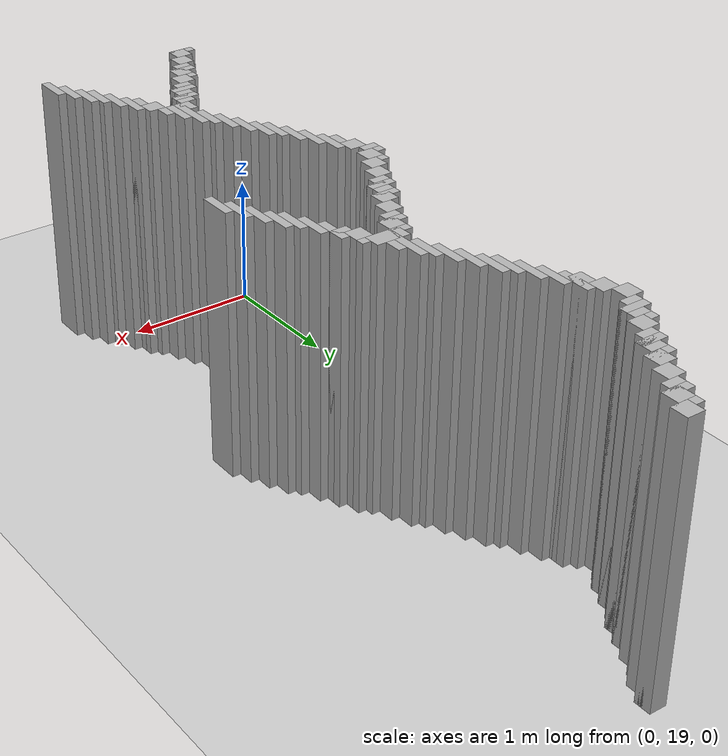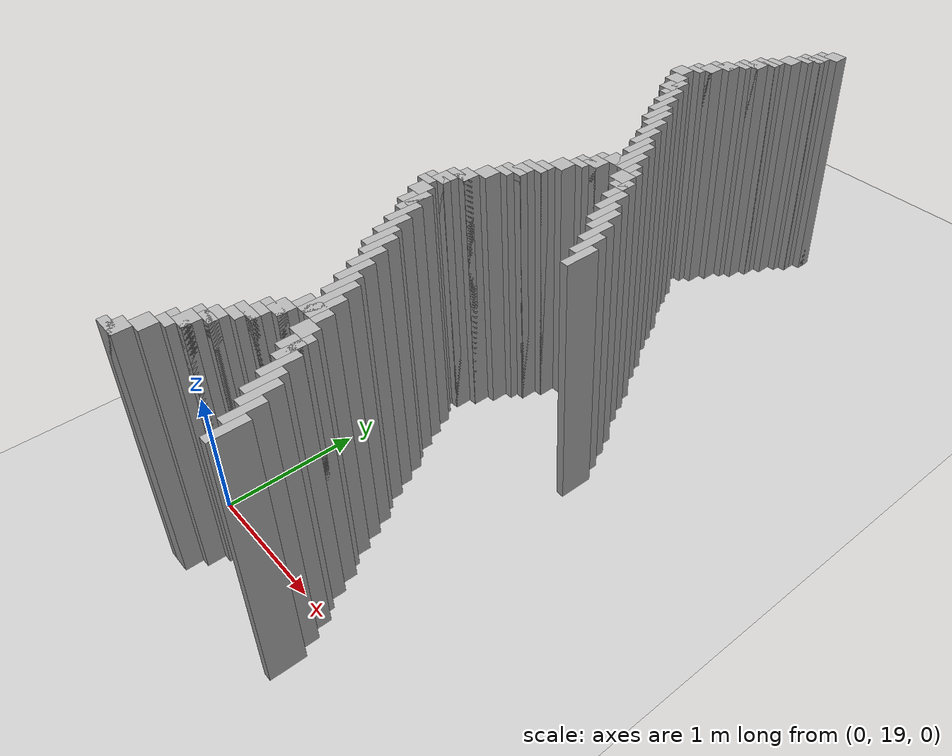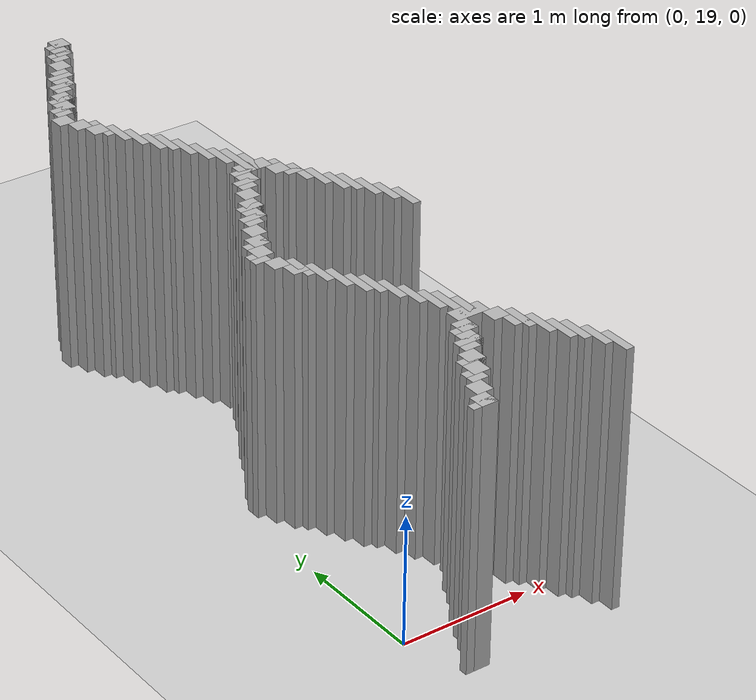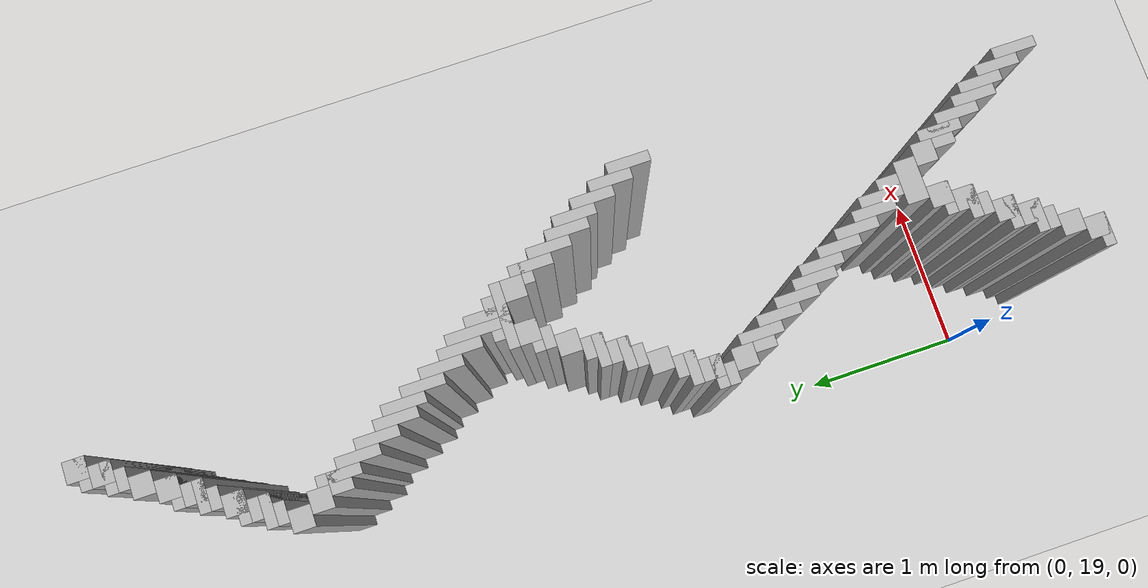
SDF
<sdf version="1.6">
 <world name="slam_world">
  <model name="ground_plane">
   <static>true</static>
   <link name="link">
    <collision name="collision">
     <geometry><plane><normal>0 0 1</normal><size>100 100</size></plane></geometry>
    </collision>
    <visual name="visual">
     <geometry><plane><normal>0 0 1</normal><size>100 100</size></plane></geometry>
     <material>
      <ambient>0.8 0.8 0.8 1</ambient>
      <diffuse>0.8 0.8 0.8 1</diffuse>
      <specular>0.8 0.8 0.8 1</specular>
     </material>
    </visual>
   </link>
  </model>
  <model name="wall_2">
   <static>true</static>
   <pose>0.7659574468085106 24.319148936170212 1.0 0 0 0</pose>
   <link name="link">
    <collision name="collision">
     <geometry><box><size>0.1276595744680851 0.1276595744680851 2.0</size></box></geometry>
    </collision>
    <visual name="visual">
     <geometry><box><size>0.1276595744680851 0.1276595744680851 2.0</size></box></geometry>
     <material><ambient>0.5 0.5 0.5 1</ambient><diffuse>0.7 0.7 0.7 1</diffuse></material>
    </visual>
   </link>
  </model>
  <model name="wall_8">
   <static>true</static>
   <pose>0.7340425531914893 24.28723404255319 1.0 0 0 0</pose>
   <link name="link">
    <collision name="collision">
     <geometry><box><size>0.19148936170212766 0.06382978723404255 2.0</size></box></geometry>
    </collision>
    <visual name="visual">
     <geometry><box><size>0.19148936170212766 0.06382978723404255 2.0</size></box></geometry>
     <material><ambient>0.5 0.5 0.5 1</ambient><diffuse>0.7 0.7 0.7 1</diffuse></material>
    </visual>
   </link>
  </model>
  <model name="wall_14">
   <static>true</static>
   <pose>0.702127659574468 24.191489361702125 1.0 0 0 0</pose>
   <link name="link">
    <collision name="collision">
     <geometry><box><size>0.1276595744680851 0.1276595744680851 2.0</size></box></geometry>
    </collision>
    <visual name="visual">
     <geometry><box><size>0.1276595744680851 0.1276595744680851 2.0</size></box></geometry>
     <material><ambient>0.5 0.5 0.5 1</ambient><diffuse>0.7 0.7 0.7 1</diffuse></material>
    </visual>
   </link>
  </model>
  <model name="wall_20">
   <static>true</static>
   <pose>0.6702127659574467 24.159574468085104 1.0 0 0 0</pose>
   <link name="link">
    <collision name="collision">
     <geometry><box><size>0.19148936170212766 0.06382978723404255 2.0</size></box></geometry>
    </collision>
    <visual name="visual">
     <geometry><box><size>0.19148936170212766 0.06382978723404255 2.0</size></box></geometry>
     <material><ambient>0.5 0.5 0.5 1</ambient><diffuse>0.7 0.7 0.7 1</diffuse></material>
    </visual>
   </link>
  </model>
  <model name="wall_26">
   <static>true</static>
   <pose>0.6382978723404255 24.095744680851062 1.0 0 0 0</pose>
   <link name="link">
    <collision name="collision">
     <geometry><box><size>0.1276595744680851 0.06382978723404255 2.0</size></box></geometry>
    </collision>
    <visual name="visual">
     <geometry><box><size>0.1276595744680851 0.06382978723404255 2.0</size></box></geometry>
     <material><ambient>0.5 0.5 0.5 1</ambient><diffuse>0.7 0.7 0.7 1</diffuse></material>
    </visual>
   </link>
  </model>
  <model name="wall_32">
   <static>true</static>
   <pose>0.5744680851063829 23.999999999999996 1.0 0 0 0</pose>
   <link name="link">
    <collision name="collision">
     <geometry><box><size>0.1276595744680851 0.1276595744680851 2.0</size></box></geometry>
    </collision>
    <visual name="visual">
     <geometry><box><size>0.1276595744680851 0.1276595744680851 2.0</size></box></geometry>
     <material><ambient>0.5 0.5 0.5 1</ambient><diffuse>0.7 0.7 0.7 1</diffuse></material>
    </visual>
   </link>
  </model>
  <model name="wall_38">
   <static>true</static>
   <pose>0.5106382978723404 23.872340425531913 1.0 0 0 0</pose>
   <link name="link">
    <collision name="collision">
     <geometry><box><size>0.1276595744680851 0.1276595744680851 2.0</size></box></geometry>
    </collision>
    <visual name="visual">
     <geometry><box><size>0.1276595744680851 0.1276595744680851 2.0</size></box></geometry>
     <material><ambient>0.5 0.5 0.5 1</ambient><diffuse>0.7 0.7 0.7 1</diffuse></material>
    </visual>
   </link>
  </model>
  <model name="wall_44">
   <static>true</static>
   <pose>0.4787234042553191 23.840425531914892 1.0 0 0 0</pose>
   <link name="link">
    <collision name="collision">
     <geometry><box><size>0.19148936170212766 0.06382978723404255 2.0</size></box></geometry>
    </collision>
    <visual name="visual">
     <geometry><box><size>0.19148936170212766 0.06382978723404255 2.0</size></box></geometry>
     <material><ambient>0.5 0.5 0.5 1</ambient><diffuse>0.7 0.7 0.7 1</diffuse></material>
    </visual>
   </link>
  </model>
  <model name="wall_50">
   <static>true</static>
   <pose>0.44680851063829785 23.744680851063826 1.0 0 0 0</pose>
   <link name="link">
    <collision name="collision">
     <geometry><box><size>0.1276595744680851 0.1276595744680851 2.0</size></box></geometry>
    </collision>
    <visual name="visual">
     <geometry><box><size>0.1276595744680851 0.1276595744680851 2.0</size></box></geometry>
     <material><ambient>0.5 0.5 0.5 1</ambient><diffuse>0.7 0.7 0.7 1</diffuse></material>
    </visual>
   </link>
  </model>
  <model name="wall_56">
   <static>true</static>
   <pose>0.4148936170212766 23.712765957446805 1.0 0 0 0</pose>
   <link name="link">
    <collision name="collision">
     <geometry><box><size>0.19148936170212766 0.06382978723404255 2.0</size></box></geometry>
    </collision>
    <visual name="visual">
     <geometry><box><size>0.19148936170212766 0.06382978723404255 2.0</size></box></geometry>
     <material><ambient>0.5 0.5 0.5 1</ambient><diffuse>0.7 0.7 0.7 1</diffuse></material>
    </visual>
   </link>
  </model>
  <model name="wall_62">
   <static>true</static>
   <pose>0.3829787234042553 23.648936170212764 1.0 0 0 0</pose>
   <link name="link">
    <collision name="collision">
     <geometry><box><size>0.1276595744680851 0.06382978723404255 2.0</size></box></geometry>
    </collision>
    <visual name="visual">
     <geometry><box><size>0.1276595744680851 0.06382978723404255 2.0</size></box></geometry>
     <material><ambient>0.5 0.5 0.5 1</ambient><diffuse>0.7 0.7 0.7 1</diffuse></material>
    </visual>
   </link>
  </model>
  <model name="wall_68">
   <static>true</static>
   <pose>0.3191489361702127 23.5531914893617 1.0 0 0 0</pose>
   <link name="link">
    <collision name="collision">
     <geometry><box><size>0.1276595744680851 0.1276595744680851 2.0</size></box></geometry>
    </collision>
    <visual name="visual">
     <geometry><box><size>0.1276595744680851 0.1276595744680851 2.0</size></box></geometry>
     <material><ambient>0.5 0.5 0.5 1</ambient><diffuse>0.7 0.7 0.7 1</diffuse></material>
    </visual>
   </link>
  </model>
  <model name="wall_74">
   <static>true</static>
   <pose>0.28723404255319146 23.52127659574468 1.0 0 0 0</pose>
   <link name="link">
    <collision name="collision">
     <geometry><box><size>0.19148936170212766 0.06382978723404255 2.0</size></box></geometry>
    </collision>
    <visual name="visual">
     <geometry><box><size>0.19148936170212766 0.06382978723404255 2.0</size></box></geometry>
     <material><ambient>0.5 0.5 0.5 1</ambient><diffuse>0.7 0.7 0.7 1</diffuse></material>
    </visual>
   </link>
  </model>
  <model name="wall_80">
   <static>true</static>
   <pose>0.2553191489361702 23.425531914893615 1.0 0 0 0</pose>
   <link name="link">
    <collision name="collision">
     <geometry><box><size>0.1276595744680851 0.1276595744680851 2.0</size></box></geometry>
    </collision>
    <visual name="visual">
     <geometry><box><size>0.1276595744680851 0.1276595744680851 2.0</size></box></geometry>
     <material><ambient>0.5 0.5 0.5 1</ambient><diffuse>0.7 0.7 0.7 1</diffuse></material>
    </visual>
   </link>
  </model>
  <model name="wall_86">
   <static>true</static>
   <pose>0.22340425531914893 23.393617021276594 1.0 0 0 0</pose>
   <link name="link">
    <collision name="collision">
     <geometry><box><size>0.19148936170212766 0.06382978723404255 2.0</size></box></geometry>
    </collision>
    <visual name="visual">
     <geometry><box><size>0.19148936170212766 0.06382978723404255 2.0</size></box></geometry>
     <material><ambient>0.5 0.5 0.5 1</ambient><diffuse>0.7 0.7 0.7 1</diffuse></material>
    </visual>
   </link>
  </model>
  <model name="wall_92">
   <static>true</static>
   <pose>0.19148936170212766 23.329787234042552 1.0 0 0 0</pose>
   <link name="link">
    <collision name="collision">
     <geometry><box><size>0.1276595744680851 0.06382978723404255 2.0</size></box></geometry>
    </collision>
    <visual name="visual">
     <geometry><box><size>0.1276595744680851 0.06382978723404255 2.0</size></box></geometry>
     <material><ambient>0.5 0.5 0.5 1</ambient><diffuse>0.7 0.7 0.7 1</diffuse></material>
    </visual>
   </link>
  </model>
  <model name="wall_98">
   <static>true</static>
   <pose>0.1276595744680851 23.234042553191486 1.0 0 0 0</pose>
   <link name="link">
    <collision name="collision">
     <geometry><box><size>0.1276595744680851 0.1276595744680851 2.0</size></box></geometry>
    </collision>
    <visual name="visual">
     <geometry><box><size>0.1276595744680851 0.1276595744680851 2.0</size></box></geometry>
     <material><ambient>0.5 0.5 0.5 1</ambient><diffuse>0.7 0.7 0.7 1</diffuse></material>
    </visual>
   </link>
  </model>
  <model name="wall_107">
   <static>true</static>
   <pose>0.19148936170212766 23.106382978723403 1.0 0 0 0</pose>
   <link name="link">
    <collision name="collision">
     <geometry><box><size>0.1276595744680851 0.1276595744680851 2.0</size></box></geometry>
    </collision>
    <visual name="visual">
     <geometry><box><size>0.1276595744680851 0.1276595744680851 2.0</size></box></geometry>
     <material><ambient>0.5 0.5 0.5 1</ambient><diffuse>0.7 0.7 0.7 1</diffuse></material>
    </visual>
   </link>
  </model>
  <model name="wall_114">
   <static>true</static>
   <pose>0.28723404255319146 22.978723404255316 1.0 0 0 0</pose>
   <link name="link">
    <collision name="collision">
     <geometry><box><size>0.06382978723404255 0.2553191489361702 2.0</size></box></geometry>
    </collision>
    <visual name="visual">
     <geometry><box><size>0.06382978723404255 0.2553191489361702 2.0</size></box></geometry>
     <material><ambient>0.5 0.5 0.5 1</ambient><diffuse>0.7 0.7 0.7 1</diffuse></material>
    </visual>
   </link>
  </model>
  <model name="wall_121">
   <static>true</static>
   <pose>0.2553191489361702 22.978723404255316 1.0 0 0 0</pose>
   <link name="link">
    <collision name="collision">
     <geometry><box><size>0.1276595744680851 0.1276595744680851 2.0</size></box></geometry>
    </collision>
    <visual name="visual">
     <geometry><box><size>0.1276595744680851 0.1276595744680851 2.0</size></box></geometry>
     <material><ambient>0.5 0.5 0.5 1</ambient><diffuse>0.7 0.7 0.7 1</diffuse></material>
    </visual>
   </link>
  </model>
  <model name="wall_129">
   <static>true</static>
   <pose>0.351063829787234 22.851063829787233 1.0 0 0 0</pose>
   <link name="link">
    <collision name="collision">
     <geometry><box><size>0.06382978723404255 0.2553191489361702 2.0</size></box></geometry>
    </collision>
    <visual name="visual">
     <geometry><box><size>0.06382978723404255 0.2553191489361702 2.0</size></box></geometry>
     <material><ambient>0.5 0.5 0.5 1</ambient><diffuse>0.7 0.7 0.7 1</diffuse></material>
    </visual>
   </link>
  </model>
  <model name="wall_140">
   <static>true</static>
   <pose>0.4148936170212766 22.723404255319146 1.0 0 0 0</pose>
   <link name="link">
    <collision name="collision">
     <geometry><box><size>0.06382978723404255 0.2553191489361702 2.0</size></box></geometry>
    </collision>
    <visual name="visual">
     <geometry><box><size>0.06382978723404255 0.2553191489361702 2.0</size></box></geometry>
     <material><ambient>0.5 0.5 0.5 1</ambient><diffuse>0.7 0.7 0.7 1</diffuse></material>
    </visual>
   </link>
  </model>
  <model name="wall_148">
   <static>true</static>
   <pose>0.4787234042553191 22.595744680851062 1.0 0 0 0</pose>
   <link name="link">
    <collision name="collision">
     <geometry><box><size>0.06382978723404255 0.2553191489361702 2.0</size></box></geometry>
    </collision>
    <visual name="visual">
     <geometry><box><size>0.06382978723404255 0.2553191489361702 2.0</size></box></geometry>
     <material><ambient>0.5 0.5 0.5 1</ambient><diffuse>0.7 0.7 0.7 1</diffuse></material>
    </visual>
   </link>
  </model>
  <model name="wall_156">
   <static>true</static>
   <pose>0.5425531914893617 22.53191489361702 1.0 0 0 0</pose>
   <link name="link">
    <collision name="collision">
     <geometry><box><size>0.06382978723404255 0.2553191489361702 2.0</size></box></geometry>
    </collision>
    <visual name="visual">
     <geometry><box><size>0.06382978723404255 0.2553191489361702 2.0</size></box></geometry>
     <material><ambient>0.5 0.5 0.5 1</ambient><diffuse>0.7 0.7 0.7 1</diffuse></material>
    </visual>
   </link>
  </model>
  <model name="wall_166">
   <static>true</static>
   <pose>0.6063829787234042 22.404255319148934 1.0 0 0 0</pose>
   <link name="link">
    <collision name="collision">
     <geometry><box><size>0.06382978723404255 0.2553191489361702 2.0</size></box></geometry>
    </collision>
    <visual name="visual">
     <geometry><box><size>0.06382978723404255 0.2553191489361702 2.0</size></box></geometry>
     <material><ambient>0.5 0.5 0.5 1</ambient><diffuse>0.7 0.7 0.7 1</diffuse></material>
    </visual>
   </link>
  </model>
  <model name="wall_176">
   <static>true</static>
   <pose>0.6702127659574467 22.27659574468085 1.0 0 0 0</pose>
   <link name="link">
    <collision name="collision">
     <geometry><box><size>0.06382978723404255 0.2553191489361702 2.0</size></box></geometry>
    </collision>
    <visual name="visual">
     <geometry><box><size>0.06382978723404255 0.2553191489361702 2.0</size></box></geometry>
     <material><ambient>0.5 0.5 0.5 1</ambient><diffuse>0.7 0.7 0.7 1</diffuse></material>
    </visual>
   </link>
  </model>
  <model name="wall_186">
   <static>true</static>
   <pose>0.7340425531914893 22.148936170212764 1.0 0 0 0</pose>
   <link name="link">
    <collision name="collision">
     <geometry><box><size>0.06382978723404255 0.2553191489361702 2.0</size></box></geometry>
    </collision>
    <visual name="visual">
     <geometry><box><size>0.06382978723404255 0.2553191489361702 2.0</size></box></geometry>
     <material><ambient>0.5 0.5 0.5 1</ambient><diffuse>0.7 0.7 0.7 1</diffuse></material>
    </visual>
   </link>
  </model>
  <model name="wall_194">
   <static>true</static>
   <pose>0.7978723404255319 22.02127659574468 1.0 0 0 0</pose>
   <link name="link">
    <collision name="collision">
     <geometry><box><size>0.06382978723404255 0.3829787234042553 2.0</size></box></geometry>
    </collision>
    <visual name="visual">
     <geometry><box><size>0.06382978723404255 0.3829787234042553 2.0</size></box></geometry>
     <material><ambient>0.5 0.5 0.5 1</ambient><diffuse>0.7 0.7 0.7 1</diffuse></material>
    </visual>
   </link>
  </model>
  <model name="wall_204">
   <static>true</static>
   <pose>0.8617021276595744 21.957446808510635 1.0 0 0 0</pose>
   <link name="link">
    <collision name="collision">
     <geometry><box><size>0.06382978723404255 0.2553191489361702 2.0</size></box></geometry>
    </collision>
    <visual name="visual">
     <geometry><box><size>0.06382978723404255 0.2553191489361702 2.0</size></box></geometry>
     <material><ambient>0.5 0.5 0.5 1</ambient><diffuse>0.7 0.7 0.7 1</diffuse></material>
    </visual>
   </link>
  </model>
  <model name="wall_212">
   <static>true</static>
   <pose>0.8297872340425532 21.893617021276594 1.0 0 0 0</pose>
   <link name="link">
    <collision name="collision">
     <geometry><box><size>0.2553191489361702 0.1276595744680851 2.0</size></box></geometry>
    </collision>
    <visual name="visual">
     <geometry><box><size>0.2553191489361702 0.1276595744680851 2.0</size></box></geometry>
     <material><ambient>0.5 0.5 0.5 1</ambient><diffuse>0.7 0.7 0.7 1</diffuse></material>
    </visual>
   </link>
  </model>
  <model name="wall_218">
   <static>true</static>
   <pose>0.8297872340425532 21.861702127659573 1.0 0 0 0</pose>
   <link name="link">
    <collision name="collision">
     <geometry><box><size>0.3829787234042553 0.06382978723404255 2.0</size></box></geometry>
    </collision>
    <visual name="visual">
     <geometry><box><size>0.3829787234042553 0.06382978723404255 2.0</size></box></geometry>
     <material><ambient>0.5 0.5 0.5 1</ambient><diffuse>0.7 0.7 0.7 1</diffuse></material>
    </visual>
   </link>
  </model>
  <model name="wall_225">
   <static>true</static>
   <pose>0.702127659574468 21.76595744680851 1.0 0 0 0</pose>
   <link name="link">
    <collision name="collision">
     <geometry><box><size>0.1276595744680851 0.1276595744680851 2.0</size></box></geometry>
    </collision>
    <visual name="visual">
     <geometry><box><size>0.1276595744680851 0.1276595744680851 2.0</size></box></geometry>
     <material><ambient>0.5 0.5 0.5 1</ambient><diffuse>0.7 0.7 0.7 1</diffuse></material>
    </visual>
   </link>
  </model>
  <model name="wall_226">
   <static>true</static>
   <pose>0.9574468085106382 21.76595744680851 1.0 0 0 0</pose>
   <link name="link">
    <collision name="collision">
     <geometry><box><size>0.1276595744680851 0.1276595744680851 2.0</size></box></geometry>
    </collision>
    <visual name="visual">
     <geometry><box><size>0.1276595744680851 0.1276595744680851 2.0</size></box></geometry>
     <material><ambient>0.5 0.5 0.5 1</ambient><diffuse>0.7 0.7 0.7 1</diffuse></material>
    </visual>
   </link>
  </model>
  <model name="wall_232">
   <static>true</static>
   <pose>0.6702127659574467 21.734042553191486 1.0 0 0 0</pose>
   <link name="link">
    <collision name="collision">
     <geometry><box><size>0.19148936170212766 0.06382978723404255 2.0</size></box></geometry>
    </collision>
    <visual name="visual">
     <geometry><box><size>0.19148936170212766 0.06382978723404255 2.0</size></box></geometry>
     <material><ambient>0.5 0.5 0.5 1</ambient><diffuse>0.7 0.7 0.7 1</diffuse></material>
    </visual>
   </link>
  </model>
  <model name="wall_233">
   <static>true</static>
   <pose>1.053191489361702 21.638297872340424 1.0 0 0 0</pose>
   <link name="link">
    <collision name="collision">
     <geometry><box><size>0.06382978723404255 0.2553191489361702 2.0</size></box></geometry>
    </collision>
    <visual name="visual">
     <geometry><box><size>0.06382978723404255 0.2553191489361702 2.0</size></box></geometry>
     <material><ambient>0.5 0.5 0.5 1</ambient><diffuse>0.7 0.7 0.7 1</diffuse></material>
    </visual>
   </link>
  </model>
  <model name="wall_240">
   <static>true</static>
   <pose>0.6382978723404255 21.670212765957444 1.0 0 0 0</pose>
   <link name="link">
    <collision name="collision">
     <geometry><box><size>0.1276595744680851 0.06382978723404255 2.0</size></box></geometry>
    </collision>
    <visual name="visual">
     <geometry><box><size>0.1276595744680851 0.06382978723404255 2.0</size></box></geometry>
     <material><ambient>0.5 0.5 0.5 1</ambient><diffuse>0.7 0.7 0.7 1</diffuse></material>
    </visual>
   </link>
  </model>
  <model name="wall_241">
   <static>true</static>
   <pose>1.0212765957446808 21.670212765957444 1.0 0 0 0</pose>
   <link name="link">
    <collision name="collision">
     <geometry><box><size>0.1276595744680851 0.06382978723404255 2.0</size></box></geometry>
    </collision>
    <visual name="visual">
     <geometry><box><size>0.1276595744680851 0.06382978723404255 2.0</size></box></geometry>
     <material><ambient>0.5 0.5 0.5 1</ambient><diffuse>0.7 0.7 0.7 1</diffuse></material>
    </visual>
   </link>
  </model>
  <model name="wall_245">
   <static>true</static>
   <pose>0.5744680851063829 21.574468085106382 1.0 0 0 0</pose>
   <link name="link">
    <collision name="collision">
     <geometry><box><size>0.1276595744680851 0.1276595744680851 2.0</size></box></geometry>
    </collision>
    <visual name="visual">
     <geometry><box><size>0.1276595744680851 0.1276595744680851 2.0</size></box></geometry>
     <material><ambient>0.5 0.5 0.5 1</ambient><diffuse>0.7 0.7 0.7 1</diffuse></material>
    </visual>
   </link>
  </model>
  <model name="wall_246">
   <static>true</static>
   <pose>1.1170212765957446 21.51063829787234 1.0 0 0 0</pose>
   <link name="link">
    <collision name="collision">
     <geometry><box><size>0.06382978723404255 0.2553191489361702 2.0</size></box></geometry>
    </collision>
    <visual name="visual">
     <geometry><box><size>0.06382978723404255 0.2553191489361702 2.0</size></box></geometry>
     <material><ambient>0.5 0.5 0.5 1</ambient><diffuse>0.7 0.7 0.7 1</diffuse></material>
    </visual>
   </link>
  </model>
  <model name="wall_253">
   <static>true</static>
   <pose>0.5106382978723404 21.446808510638295 1.0 0 0 0</pose>
   <link name="link">
    <collision name="collision">
     <geometry><box><size>0.1276595744680851 0.1276595744680851 2.0</size></box></geometry>
    </collision>
    <visual name="visual">
     <geometry><box><size>0.1276595744680851 0.1276595744680851 2.0</size></box></geometry>
     <material><ambient>0.5 0.5 0.5 1</ambient><diffuse>0.7 0.7 0.7 1</diffuse></material>
    </visual>
   </link>
  </model>
  <model name="wall_254">
   <static>true</static>
   <pose>1.180851063829787 21.382978723404253 1.0 0 0 0</pose>
   <link name="link">
    <collision name="collision">
     <geometry><box><size>0.06382978723404255 0.2553191489361702 2.0</size></box></geometry>
    </collision>
    <visual name="visual">
     <geometry><box><size>0.06382978723404255 0.2553191489361702 2.0</size></box></geometry>
     <material><ambient>0.5 0.5 0.5 1</ambient><diffuse>0.7 0.7 0.7 1</diffuse></material>
    </visual>
   </link>
  </model>
  <model name="wall_261">
   <static>true</static>
   <pose>0.4787234042553191 21.414893617021274 1.0 0 0 0</pose>
   <link name="link">
    <collision name="collision">
     <geometry><box><size>0.19148936170212766 0.06382978723404255 2.0</size></box></geometry>
    </collision>
    <visual name="visual">
     <geometry><box><size>0.19148936170212766 0.06382978723404255 2.0</size></box></geometry>
     <material><ambient>0.5 0.5 0.5 1</ambient><diffuse>0.7 0.7 0.7 1</diffuse></material>
    </visual>
   </link>
  </model>
  <model name="wall_262">
   <static>true</static>
   <pose>1.2446808510638296 21.319148936170212 1.0 0 0 0</pose>
   <link name="link">
    <collision name="collision">
     <geometry><box><size>0.06382978723404255 0.2553191489361702 2.0</size></box></geometry>
    </collision>
    <visual name="visual">
     <geometry><box><size>0.06382978723404255 0.2553191489361702 2.0</size></box></geometry>
     <material><ambient>0.5 0.5 0.5 1</ambient><diffuse>0.7 0.7 0.7 1</diffuse></material>
    </visual>
   </link>
  </model>
  <model name="wall_269">
   <static>true</static>
   <pose>0.44680851063829785 21.319148936170212 1.0 0 0 0</pose>
   <link name="link">
    <collision name="collision">
     <geometry><box><size>0.1276595744680851 0.1276595744680851 2.0</size></box></geometry>
    </collision>
    <visual name="visual">
     <geometry><box><size>0.1276595744680851 0.1276595744680851 2.0</size></box></geometry>
     <material><ambient>0.5 0.5 0.5 1</ambient><diffuse>0.7 0.7 0.7 1</diffuse></material>
    </visual>
   </link>
  </model>
  <model name="wall_273">
   <static>true</static>
   <pose>0.4148936170212766 21.28723404255319 1.0 0 0 0</pose>
   <link name="link">
    <collision name="collision">
     <geometry><box><size>0.19148936170212766 0.06382978723404255 2.0</size></box></geometry>
    </collision>
    <visual name="visual">
     <geometry><box><size>0.19148936170212766 0.06382978723404255 2.0</size></box></geometry>
     <material><ambient>0.5 0.5 0.5 1</ambient><diffuse>0.7 0.7 0.7 1</diffuse></material>
    </visual>
   </link>
  </model>
  <model name="wall_274">
   <static>true</static>
   <pose>1.3085106382978722 21.191489361702125 1.0 0 0 0</pose>
   <link name="link">
    <collision name="collision">
     <geometry><box><size>0.06382978723404255 0.2553191489361702 2.0</size></box></geometry>
    </collision>
    <visual name="visual">
     <geometry><box><size>0.06382978723404255 0.2553191489361702 2.0</size></box></geometry>
     <material><ambient>0.5 0.5 0.5 1</ambient><diffuse>0.7 0.7 0.7 1</diffuse></material>
    </visual>
   </link>
  </model>
  <model name="wall_281">
   <static>true</static>
   <pose>0.3829787234042553 21.223404255319146 1.0 0 0 0</pose>
   <link name="link">
    <collision name="collision">
     <geometry><box><size>0.1276595744680851 0.06382978723404255 2.0</size></box></geometry>
    </collision>
    <visual name="visual">
     <geometry><box><size>0.1276595744680851 0.06382978723404255 2.0</size></box></geometry>
     <material><ambient>0.5 0.5 0.5 1</ambient><diffuse>0.7 0.7 0.7 1</diffuse></material>
    </visual>
   </link>
  </model>
  <model name="wall_285">
   <static>true</static>
   <pose>0.3191489361702127 21.127659574468083 1.0 0 0 0</pose>
   <link name="link">
    <collision name="collision">
     <geometry><box><size>0.1276595744680851 0.1276595744680851 2.0</size></box></geometry>
    </collision>
    <visual name="visual">
     <geometry><box><size>0.1276595744680851 0.1276595744680851 2.0</size></box></geometry>
     <material><ambient>0.5 0.5 0.5 1</ambient><diffuse>0.7 0.7 0.7 1</diffuse></material>
    </visual>
   </link>
  </model>
  <model name="wall_286">
   <static>true</static>
   <pose>1.3723404255319147 21.06382978723404 1.0 0 0 0</pose>
   <link name="link">
    <collision name="collision">
     <geometry><box><size>0.06382978723404255 0.2553191489361702 2.0</size></box></geometry>
    </collision>
    <visual name="visual">
     <geometry><box><size>0.06382978723404255 0.2553191489361702 2.0</size></box></geometry>
     <material><ambient>0.5 0.5 0.5 1</ambient><diffuse>0.7 0.7 0.7 1</diffuse></material>
    </visual>
   </link>
  </model>
  <model name="wall_293">
   <static>true</static>
   <pose>0.2553191489361702 21.0 1.0 0 0 0</pose>
   <link name="link">
    <collision name="collision">
     <geometry><box><size>0.1276595744680851 0.1276595744680851 2.0</size></box></geometry>
    </collision>
    <visual name="visual">
     <geometry><box><size>0.1276595744680851 0.1276595744680851 2.0</size></box></geometry>
     <material><ambient>0.5 0.5 0.5 1</ambient><diffuse>0.7 0.7 0.7 1</diffuse></material>
    </visual>
   </link>
  </model>
  <model name="wall_294">
   <static>true</static>
   <pose>1.4361702127659572 20.936170212765955 1.0 0 0 0</pose>
   <link name="link">
    <collision name="collision">
     <geometry><box><size>0.06382978723404255 0.2553191489361702 2.0</size></box></geometry>
    </collision>
    <visual name="visual">
     <geometry><box><size>0.06382978723404255 0.2553191489361702 2.0</size></box></geometry>
     <material><ambient>0.5 0.5 0.5 1</ambient><diffuse>0.7 0.7 0.7 1</diffuse></material>
    </visual>
   </link>
  </model>
  <model name="wall_301">
   <static>true</static>
   <pose>0.22340425531914893 20.968085106382976 1.0 0 0 0</pose>
   <link name="link">
    <collision name="collision">
     <geometry><box><size>0.19148936170212766 0.06382978723404255 2.0</size></box></geometry>
    </collision>
    <visual name="visual">
     <geometry><box><size>0.19148936170212766 0.06382978723404255 2.0</size></box></geometry>
     <material><ambient>0.5 0.5 0.5 1</ambient><diffuse>0.7 0.7 0.7 1</diffuse></material>
    </visual>
   </link>
  </model>
  <model name="wall_309">
   <static>true</static>
   <pose>0.19148936170212766 20.872340425531913 1.0 0 0 0</pose>
   <link name="link">
    <collision name="collision">
     <geometry><box><size>0.1276595744680851 0.1276595744680851 2.0</size></box></geometry>
    </collision>
    <visual name="visual">
     <geometry><box><size>0.1276595744680851 0.1276595744680851 2.0</size></box></geometry>
     <material><ambient>0.5 0.5 0.5 1</ambient><diffuse>0.7 0.7 0.7 1</diffuse></material>
    </visual>
   </link>
  </model>
  <model name="wall_313">
   <static>true</static>
   <pose>0.15957446808510636 20.840425531914892 1.0 0 0 0</pose>
   <link name="link">
    <collision name="collision">
     <geometry><box><size>0.19148936170212766 0.06382978723404255 2.0</size></box></geometry>
    </collision>
    <visual name="visual">
     <geometry><box><size>0.19148936170212766 0.06382978723404255 2.0</size></box></geometry>
     <material><ambient>0.5 0.5 0.5 1</ambient><diffuse>0.7 0.7 0.7 1</diffuse></material>
    </visual>
   </link>
  </model>
  <model name="wall_322">
   <static>true</static>
   <pose>0.1276595744680851 20.77659574468085 1.0 0 0 0</pose>
   <link name="link">
    <collision name="collision">
     <geometry><box><size>0.1276595744680851 0.06382978723404255 2.0</size></box></geometry>
    </collision>
    <visual name="visual">
     <geometry><box><size>0.1276595744680851 0.06382978723404255 2.0</size></box></geometry>
     <material><ambient>0.5 0.5 0.5 1</ambient><diffuse>0.7 0.7 0.7 1</diffuse></material>
    </visual>
   </link>
  </model>
  <model name="wall_326">
   <static>true</static>
   <pose>0.19148936170212766 20.680851063829785 1.0 0 0 0</pose>
   <link name="link">
    <collision name="collision">
     <geometry><box><size>0.1276595744680851 0.1276595744680851 2.0</size></box></geometry>
    </collision>
    <visual name="visual">
     <geometry><box><size>0.1276595744680851 0.1276595744680851 2.0</size></box></geometry>
     <material><ambient>0.5 0.5 0.5 1</ambient><diffuse>0.7 0.7 0.7 1</diffuse></material>
    </visual>
   </link>
  </model>
  <model name="wall_334">
   <static>true</static>
   <pose>0.28723404255319146 20.5531914893617 1.0 0 0 0</pose>
   <link name="link">
    <collision name="collision">
     <geometry><box><size>0.06382978723404255 0.2553191489361702 2.0</size></box></geometry>
    </collision>
    <visual name="visual">
     <geometry><box><size>0.06382978723404255 0.2553191489361702 2.0</size></box></geometry>
     <material><ambient>0.5 0.5 0.5 1</ambient><diffuse>0.7 0.7 0.7 1</diffuse></material>
    </visual>
   </link>
  </model>
  <model name="wall_342">
   <static>true</static>
   <pose>0.2553191489361702 20.5531914893617 1.0 0 0 0</pose>
   <link name="link">
    <collision name="collision">
     <geometry><box><size>0.1276595744680851 0.1276595744680851 2.0</size></box></geometry>
    </collision>
    <visual name="visual">
     <geometry><box><size>0.1276595744680851 0.1276595744680851 2.0</size></box></geometry>
     <material><ambient>0.5 0.5 0.5 1</ambient><diffuse>0.7 0.7 0.7 1</diffuse></material>
    </visual>
   </link>
  </model>
  <model name="wall_349">
   <static>true</static>
   <pose>0.351063829787234 20.425531914893615 1.0 0 0 0</pose>
   <link name="link">
    <collision name="collision">
     <geometry><box><size>0.06382978723404255 0.2553191489361702 2.0</size></box></geometry>
    </collision>
    <visual name="visual">
     <geometry><box><size>0.06382978723404255 0.2553191489361702 2.0</size></box></geometry>
     <material><ambient>0.5 0.5 0.5 1</ambient><diffuse>0.7 0.7 0.7 1</diffuse></material>
    </visual>
   </link>
  </model>
  <model name="wall_361">
   <static>true</static>
   <pose>0.4148936170212766 20.29787234042553 1.0 0 0 0</pose>
   <link name="link">
    <collision name="collision">
     <geometry><box><size>0.06382978723404255 0.2553191489361702 2.0</size></box></geometry>
    </collision>
    <visual name="visual">
     <geometry><box><size>0.06382978723404255 0.2553191489361702 2.0</size></box></geometry>
     <material><ambient>0.5 0.5 0.5 1</ambient><diffuse>0.7 0.7 0.7 1</diffuse></material>
    </visual>
   </link>
  </model>
  <model name="wall_369">
   <static>true</static>
   <pose>0.4787234042553191 20.170212765957444 1.0 0 0 0</pose>
   <link name="link">
    <collision name="collision">
     <geometry><box><size>0.06382978723404255 0.2553191489361702 2.0</size></box></geometry>
    </collision>
    <visual name="visual">
     <geometry><box><size>0.06382978723404255 0.2553191489361702 2.0</size></box></geometry>
     <material><ambient>0.5 0.5 0.5 1</ambient><diffuse>0.7 0.7 0.7 1</diffuse></material>
    </visual>
   </link>
  </model>
  <model name="wall_377">
   <static>true</static>
   <pose>0.5425531914893617 20.106382978723403 1.0 0 0 0</pose>
   <link name="link">
    <collision name="collision">
     <geometry><box><size>0.06382978723404255 0.2553191489361702 2.0</size></box></geometry>
    </collision>
    <visual name="visual">
     <geometry><box><size>0.06382978723404255 0.2553191489361702 2.0</size></box></geometry>
     <material><ambient>0.5 0.5 0.5 1</ambient><diffuse>0.7 0.7 0.7 1</diffuse></material>
    </visual>
   </link>
  </model>
  <model name="wall_389">
   <static>true</static>
   <pose>0.6063829787234042 19.978723404255316 1.0 0 0 0</pose>
   <link name="link">
    <collision name="collision">
     <geometry><box><size>0.06382978723404255 0.2553191489361702 2.0</size></box></geometry>
    </collision>
    <visual name="visual">
     <geometry><box><size>0.06382978723404255 0.2553191489361702 2.0</size></box></geometry>
     <material><ambient>0.5 0.5 0.5 1</ambient><diffuse>0.7 0.7 0.7 1</diffuse></material>
    </visual>
   </link>
  </model>
  <model name="wall_401">
   <static>true</static>
   <pose>0.6702127659574467 19.851063829787233 1.0 0 0 0</pose>
   <link name="link">
    <collision name="collision">
     <geometry><box><size>0.06382978723404255 0.2553191489361702 2.0</size></box></geometry>
    </collision>
    <visual name="visual">
     <geometry><box><size>0.06382978723404255 0.2553191489361702 2.0</size></box></geometry>
     <material><ambient>0.5 0.5 0.5 1</ambient><diffuse>0.7 0.7 0.7 1</diffuse></material>
    </visual>
   </link>
  </model>
  <model name="wall_409">
   <static>true</static>
   <pose>0.7340425531914893 19.723404255319146 1.0 0 0 0</pose>
   <link name="link">
    <collision name="collision">
     <geometry><box><size>0.06382978723404255 0.2553191489361702 2.0</size></box></geometry>
    </collision>
    <visual name="visual">
     <geometry><box><size>0.06382978723404255 0.2553191489361702 2.0</size></box></geometry>
     <material><ambient>0.5 0.5 0.5 1</ambient><diffuse>0.7 0.7 0.7 1</diffuse></material>
    </visual>
   </link>
  </model>
  <model name="wall_417">
   <static>true</static>
   <pose>0.7978723404255319 19.595744680851062 1.0 0 0 0</pose>
   <link name="link">
    <collision name="collision">
     <geometry><box><size>0.06382978723404255 0.3829787234042553 2.0</size></box></geometry>
    </collision>
    <visual name="visual">
     <geometry><box><size>0.06382978723404255 0.3829787234042553 2.0</size></box></geometry>
     <material><ambient>0.5 0.5 0.5 1</ambient><diffuse>0.7 0.7 0.7 1</diffuse></material>
    </visual>
   </link>
  </model>
  <model name="wall_429">
   <static>true</static>
   <pose>0.8617021276595744 19.53191489361702 1.0 0 0 0</pose>
   <link name="link">
    <collision name="collision">
     <geometry><box><size>0.06382978723404255 0.2553191489361702 2.0</size></box></geometry>
    </collision>
    <visual name="visual">
     <geometry><box><size>0.06382978723404255 0.2553191489361702 2.0</size></box></geometry>
     <material><ambient>0.5 0.5 0.5 1</ambient><diffuse>0.7 0.7 0.7 1</diffuse></material>
    </visual>
   </link>
  </model>
  <model name="wall_443">
   <static>true</static>
   <pose>0.8297872340425532 19.468085106382976 1.0 0 0 0</pose>
   <link name="link">
    <collision name="collision">
     <geometry><box><size>0.2553191489361702 0.1276595744680851 2.0</size></box></geometry>
    </collision>
    <visual name="visual">
     <geometry><box><size>0.2553191489361702 0.1276595744680851 2.0</size></box></geometry>
     <material><ambient>0.5 0.5 0.5 1</ambient><diffuse>0.7 0.7 0.7 1</diffuse></material>
    </visual>
   </link>
  </model>
  <model name="wall_452">
   <static>true</static>
   <pose>0.702127659574468 19.340425531914892 1.0 0 0 0</pose>
   <link name="link">
    <collision name="collision">
     <geometry><box><size>0.1276595744680851 0.1276595744680851 2.0</size></box></geometry>
    </collision>
    <visual name="visual">
     <geometry><box><size>0.1276595744680851 0.1276595744680851 2.0</size></box></geometry>
     <material><ambient>0.5 0.5 0.5 1</ambient><diffuse>0.7 0.7 0.7 1</diffuse></material>
    </visual>
   </link>
  </model>
  <model name="wall_453">
   <static>true</static>
   <pose>0.9574468085106382 19.340425531914892 1.0 0 0 0</pose>
   <link name="link">
    <collision name="collision">
     <geometry><box><size>0.1276595744680851 0.1276595744680851 2.0</size></box></geometry>
    </collision>
    <visual name="visual">
     <geometry><box><size>0.1276595744680851 0.1276595744680851 2.0</size></box></geometry>
     <material><ambient>0.5 0.5 0.5 1</ambient><diffuse>0.7 0.7 0.7 1</diffuse></material>
    </visual>
   </link>
  </model>
  <model name="wall_462">
   <static>true</static>
   <pose>0.6702127659574467 19.30851063829787 1.0 0 0 0</pose>
   <link name="link">
    <collision name="collision">
     <geometry><box><size>0.19148936170212766 0.06382978723404255 2.0</size></box></geometry>
    </collision>
    <visual name="visual">
     <geometry><box><size>0.19148936170212766 0.06382978723404255 2.0</size></box></geometry>
     <material><ambient>0.5 0.5 0.5 1</ambient><diffuse>0.7 0.7 0.7 1</diffuse></material>
    </visual>
   </link>
  </model>
  <model name="wall_463">
   <static>true</static>
   <pose>1.053191489361702 19.212765957446805 1.0 0 0 0</pose>
   <link name="link">
    <collision name="collision">
     <geometry><box><size>0.06382978723404255 0.2553191489361702 2.0</size></box></geometry>
    </collision>
    <visual name="visual">
     <geometry><box><size>0.06382978723404255 0.2553191489361702 2.0</size></box></geometry>
     <material><ambient>0.5 0.5 0.5 1</ambient><diffuse>0.7 0.7 0.7 1</diffuse></material>
    </visual>
   </link>
  </model>
  <model name="wall_472">
   <static>true</static>
   <pose>0.6382978723404255 19.212765957446805 1.0 0 0 0</pose>
   <link name="link">
    <collision name="collision">
     <geometry><box><size>0.1276595744680851 0.1276595744680851 2.0</size></box></geometry>
    </collision>
    <visual name="visual">
     <geometry><box><size>0.1276595744680851 0.1276595744680851 2.0</size></box></geometry>
     <material><ambient>0.5 0.5 0.5 1</ambient><diffuse>0.7 0.7 0.7 1</diffuse></material>
    </visual>
   </link>
  </model>
  <model name="wall_473">
   <static>true</static>
   <pose>1.0212765957446808 19.212765957446805 1.0 0 0 0</pose>
   <link name="link">
    <collision name="collision">
     <geometry><box><size>0.1276595744680851 0.1276595744680851 2.0</size></box></geometry>
    </collision>
    <visual name="visual">
     <geometry><box><size>0.1276595744680851 0.1276595744680851 2.0</size></box></geometry>
     <material><ambient>0.5 0.5 0.5 1</ambient><diffuse>0.7 0.7 0.7 1</diffuse></material>
    </visual>
   </link>
  </model>
  <model name="wall_482">
   <static>true</static>
   <pose>0.6063829787234042 19.180851063829785 1.0 0 0 0</pose>
   <link name="link">
    <collision name="collision">
     <geometry><box><size>0.19148936170212766 0.06382978723404255 2.0</size></box></geometry>
    </collision>
    <visual name="visual">
     <geometry><box><size>0.19148936170212766 0.06382978723404255 2.0</size></box></geometry>
     <material><ambient>0.5 0.5 0.5 1</ambient><diffuse>0.7 0.7 0.7 1</diffuse></material>
    </visual>
   </link>
  </model>
  <model name="wall_483">
   <static>true</static>
   <pose>1.1170212765957446 19.085106382978722 1.0 0 0 0</pose>
   <link name="link">
    <collision name="collision">
     <geometry><box><size>0.06382978723404255 0.2553191489361702 2.0</size></box></geometry>
    </collision>
    <visual name="visual">
     <geometry><box><size>0.06382978723404255 0.2553191489361702 2.0</size></box></geometry>
     <material><ambient>0.5 0.5 0.5 1</ambient><diffuse>0.7 0.7 0.7 1</diffuse></material>
    </visual>
   </link>
  </model>
  <model name="wall_492">
   <static>true</static>
   <pose>0.5744680851063829 19.117021276595743 1.0 0 0 0</pose>
   <link name="link">
    <collision name="collision">
     <geometry><box><size>0.1276595744680851 0.06382978723404255 2.0</size></box></geometry>
    </collision>
    <visual name="visual">
     <geometry><box><size>0.1276595744680851 0.06382978723404255 2.0</size></box></geometry>
     <material><ambient>0.5 0.5 0.5 1</ambient><diffuse>0.7 0.7 0.7 1</diffuse></material>
    </visual>
   </link>
  </model>
  <model name="wall_498">
   <static>true</static>
   <pose>0.5106382978723404 19.02127659574468 1.0 0 0 0</pose>
   <link name="link">
    <collision name="collision">
     <geometry><box><size>0.1276595744680851 0.1276595744680851 2.0</size></box></geometry>
    </collision>
    <visual name="visual">
     <geometry><box><size>0.1276595744680851 0.1276595744680851 2.0</size></box></geometry>
     <material><ambient>0.5 0.5 0.5 1</ambient><diffuse>0.7 0.7 0.7 1</diffuse></material>
    </visual>
   </link>
  </model>
  <model name="wall_499">
   <static>true</static>
   <pose>1.180851063829787 18.957446808510635 1.0 0 0 0</pose>
   <link name="link">
    <collision name="collision">
     <geometry><box><size>0.06382978723404255 0.2553191489361702 2.0</size></box></geometry>
    </collision>
    <visual name="visual">
     <geometry><box><size>0.06382978723404255 0.2553191489361702 2.0</size></box></geometry>
     <material><ambient>0.5 0.5 0.5 1</ambient><diffuse>0.7 0.7 0.7 1</diffuse></material>
    </visual>
   </link>
  </model>
  <model name="wall_508">
   <static>true</static>
   <pose>0.4787234042553191 18.98936170212766 1.0 0 0 0</pose>
   <link name="link">
    <collision name="collision">
     <geometry><box><size>0.19148936170212766 0.06382978723404255 2.0</size></box></geometry>
    </collision>
    <visual name="visual">
     <geometry><box><size>0.19148936170212766 0.06382978723404255 2.0</size></box></geometry>
     <material><ambient>0.5 0.5 0.5 1</ambient><diffuse>0.7 0.7 0.7 1</diffuse></material>
    </visual>
   </link>
  </model>
  <model name="wall_509">
   <static>true</static>
   <pose>1.2446808510638296 18.893617021276594 1.0 0 0 0</pose>
   <link name="link">
    <collision name="collision">
     <geometry><box><size>0.06382978723404255 0.2553191489361702 2.0</size></box></geometry>
    </collision>
    <visual name="visual">
     <geometry><box><size>0.06382978723404255 0.2553191489361702 2.0</size></box></geometry>
     <material><ambient>0.5 0.5 0.5 1</ambient><diffuse>0.7 0.7 0.7 1</diffuse></material>
    </visual>
   </link>
  </model>
  <model name="wall_518">
   <static>true</static>
   <pose>0.44680851063829785 18.893617021276594 1.0 0 0 0</pose>
   <link name="link">
    <collision name="collision">
     <geometry><box><size>0.1276595744680851 0.1276595744680851 2.0</size></box></geometry>
    </collision>
    <visual name="visual">
     <geometry><box><size>0.1276595744680851 0.1276595744680851 2.0</size></box></geometry>
     <material><ambient>0.5 0.5 0.5 1</ambient><diffuse>0.7 0.7 0.7 1</diffuse></material>
    </visual>
   </link>
  </model>
  <model name="wall_524">
   <static>true</static>
   <pose>0.4148936170212766 18.861702127659573 1.0 0 0 0</pose>
   <link name="link">
    <collision name="collision">
     <geometry><box><size>0.19148936170212766 0.06382978723404255 2.0</size></box></geometry>
    </collision>
    <visual name="visual">
     <geometry><box><size>0.19148936170212766 0.06382978723404255 2.0</size></box></geometry>
     <material><ambient>0.5 0.5 0.5 1</ambient><diffuse>0.7 0.7 0.7 1</diffuse></material>
    </visual>
   </link>
  </model>
  <model name="wall_525">
   <static>true</static>
   <pose>1.3085106382978722 18.76595744680851 1.0 0 0 0</pose>
   <link name="link">
    <collision name="collision">
     <geometry><box><size>0.06382978723404255 0.2553191489361702 2.0</size></box></geometry>
    </collision>
    <visual name="visual">
     <geometry><box><size>0.06382978723404255 0.2553191489361702 2.0</size></box></geometry>
     <material><ambient>0.5 0.5 0.5 1</ambient><diffuse>0.7 0.7 0.7 1</diffuse></material>
    </visual>
   </link>
  </model>
  <model name="wall_534">
   <static>true</static>
   <pose>0.3829787234042553 18.79787234042553 1.0 0 0 0</pose>
   <link name="link">
    <collision name="collision">
     <geometry><box><size>0.1276595744680851 0.06382978723404255 2.0</size></box></geometry>
    </collision>
    <visual name="visual">
     <geometry><box><size>0.1276595744680851 0.06382978723404255 2.0</size></box></geometry>
     <material><ambient>0.5 0.5 0.5 1</ambient><diffuse>0.7 0.7 0.7 1</diffuse></material>
    </visual>
   </link>
  </model>
  <model name="wall_540">
   <static>true</static>
   <pose>0.3191489361702127 18.702127659574465 1.0 0 0 0</pose>
   <link name="link">
    <collision name="collision">
     <geometry><box><size>0.1276595744680851 0.1276595744680851 2.0</size></box></geometry>
    </collision>
    <visual name="visual">
     <geometry><box><size>0.1276595744680851 0.1276595744680851 2.0</size></box></geometry>
     <material><ambient>0.5 0.5 0.5 1</ambient><diffuse>0.7 0.7 0.7 1</diffuse></material>
    </visual>
   </link>
  </model>
  <model name="wall_541">
   <static>true</static>
   <pose>1.3723404255319147 18.638297872340424 1.0 0 0 0</pose>
   <link name="link">
    <collision name="collision">
     <geometry><box><size>0.06382978723404255 0.2553191489361702 2.0</size></box></geometry>
    </collision>
    <visual name="visual">
     <geometry><box><size>0.06382978723404255 0.2553191489361702 2.0</size></box></geometry>
     <material><ambient>0.5 0.5 0.5 1</ambient><diffuse>0.7 0.7 0.7 1</diffuse></material>
    </visual>
   </link>
  </model>
  <model name="wall_550">
   <static>true</static>
   <pose>0.2553191489361702 18.574468085106382 1.0 0 0 0</pose>
   <link name="link">
    <collision name="collision">
     <geometry><box><size>0.1276595744680851 0.1276595744680851 2.0</size></box></geometry>
    </collision>
    <visual name="visual">
     <geometry><box><size>0.1276595744680851 0.1276595744680851 2.0</size></box></geometry>
     <material><ambient>0.5 0.5 0.5 1</ambient><diffuse>0.7 0.7 0.7 1</diffuse></material>
    </visual>
   </link>
  </model>
  <model name="wall_560">
   <static>true</static>
   <pose>0.22340425531914893 18.54255319148936 1.0 0 0 0</pose>
   <link name="link">
    <collision name="collision">
     <geometry><box><size>0.19148936170212766 0.06382978723404255 2.0</size></box></geometry>
    </collision>
    <visual name="visual">
     <geometry><box><size>0.19148936170212766 0.06382978723404255 2.0</size></box></geometry>
     <material><ambient>0.5 0.5 0.5 1</ambient><diffuse>0.7 0.7 0.7 1</diffuse></material>
    </visual>
   </link>
  </model>
 </world>
</sdf>
